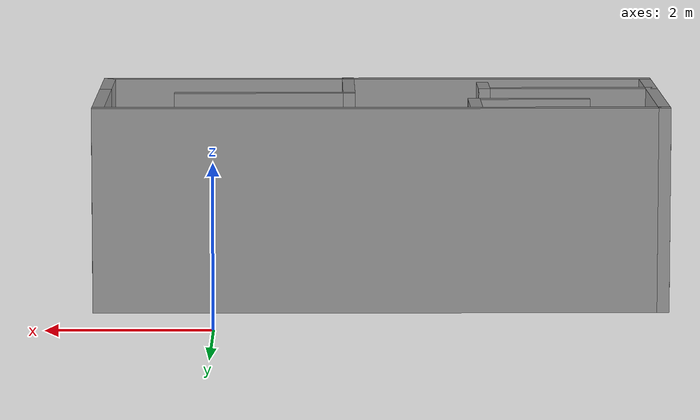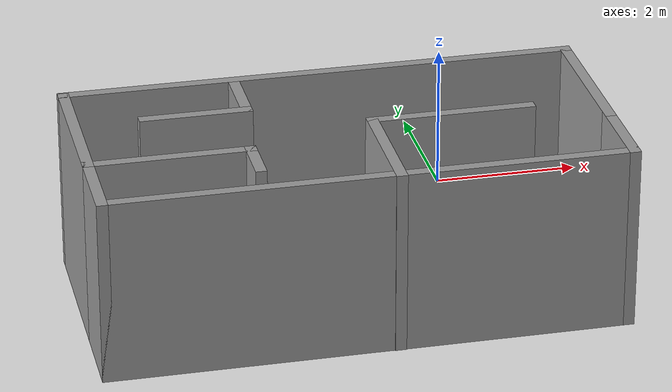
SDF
<?xml version='1.0'?>
<sdf version='1.7'>
  <model name='room'>
    <pose>-2.005 -2.3025 0 0 -0 0</pose>
    <link name='Wall_10'>
      <collision name='Wall_10_Collision'>
        <geometry>
          <box>
            <size>1.5 0.15 2.5</size>
          </box>
        </geometry>
        <pose>0 0 1.25 0 -0 0</pose>
      </collision>
      <visual name='Wall_10_Visual'>
        <pose>0 0 1.25 0 -0 0</pose>
        <geometry>
          <box>
            <size>1.5 0.15 2.5</size>
          </box>
        </geometry>
        <material>
          <script>
            <uri>file://media/materials/scripts/gazebo.material</uri>
            <name>Gazebo/Grey</name>
          </script>
          <ambient>1 1 1 1</ambient>
        </material>
        <meta>
          <layer>0</layer>
        </meta>
      </visual>
      <pose>-1.83 0.0425 0 0 -0 3.14159</pose>
    </link>
    <link name='Wall_14'>
      <collision name='Wall_14_Collision'>
        <geometry>
          <box>
            <size>1.25 0.15 2.5</size>
          </box>
        </geometry>
        <pose>0 0 1.25 0 -0 0</pose>
      </collision>
      <visual name='Wall_14_Visual'>
        <pose>0 0 1.25 0 -0 0</pose>
        <geometry>
          <box>
            <size>1.25 0.15 2.5</size>
          </box>
        </geometry>
        <material>
          <script>
            <uri>file://media/materials/scripts/gazebo.material</uri>
            <name>Gazebo/Grey</name>
          </script>
          <ambient>1 1 1 1</ambient>
        </material>
        <meta>
          <layer>0</layer>
        </meta>
      </visual>
      <pose>-3.425 -1.6675 0 0 -0 -1.5708</pose>
    </link>
    <link name='Wall_15'>
      <collision name='Wall_15_Collision'>
        <geometry>
          <box>
            <size>7 0.15 2.5</size>
          </box>
        </geometry>
        <pose>0 0 1.25 0 -0 0</pose>
      </collision>
      <visual name='Wall_15_Visual'>
        <pose>0 0 1.25 0 -0 0</pose>
        <geometry>
          <box>
            <size>7 0.15 2.5</size>
          </box>
        </geometry>
        <material>
          <script>
            <uri>file://media/materials/scripts/gazebo.material</uri>
            <name>Gazebo/Grey</name>
          </script>
          <ambient>1 1 1 1</ambient>
        </material>
        <meta>
          <layer>0</layer>
        </meta>
      </visual>
      <pose>-0 -2.2175 0 0 -0 0</pose>
    </link>
    <link name='Wall_16'>
      <collision name='Wall_16_Collision'>
        <geometry>
          <box>
            <size>1.25 0.15 2.5</size>
          </box>
        </geometry>
        <pose>0 0 1.25 0 -0 0</pose>
      </collision>
      <visual name='Wall_16_Visual'>
        <pose>0 0 1.25 0 -0 0</pose>
        <geometry>
          <box>
            <size>1.25 0.15 2.5</size>
          </box>
        </geometry>
        <material>
          <script>
            <uri>file://media/materials/scripts/gazebo.material</uri>
            <name>Gazebo/Grey</name>
          </script>
          <ambient>1 1 1 1</ambient>
        </material>
        <meta>
          <layer>0</layer>
        </meta>
      </visual>
      <pose>3.425 -1.6675 0 0 -0 1.5708</pose>
    </link>
    <link name='Wall_18'>
      <collision name='Wall_18_Collision'>
        <geometry>
          <box>
            <size>7 0.15 2.5</size>
          </box>
        </geometry>
        <pose>0 0 1.25 0 -0 0</pose>
      </collision>
      <visual name='Wall_18_Visual'>
        <pose>0 0 1.25 0 -0 0</pose>
        <geometry>
          <box>
            <size>7 0.15 2.5</size>
          </box>
        </geometry>
        <material>
          <script>
            <uri>file://media/materials/scripts/gazebo.material</uri>
            <name>Gazebo/Grey</name>
          </script>
          <ambient>1 1 1 1</ambient>
        </material>
        <meta>
          <layer>0</layer>
        </meta>
      </visual>
      <pose>-0 0.9825 0 0 -0 0</pose>
    </link>
    <link name='Wall_20'>
      <collision name='Wall_20_Collision'>
        <geometry>
          <box>
            <size>2.25 0.15 2.5</size>
          </box>
        </geometry>
        <pose>0 0 1.25 0 -0 0</pose>
      </collision>
      <visual name='Wall_20_Visual'>
        <pose>0 0 1.25 0 -0 0</pose>
        <geometry>
          <box>
            <size>2.25 0.15 2.5</size>
          </box>
        </geometry>
        <material>
          <script>
            <uri>file://media/materials/scripts/gazebo.material</uri>
            <name>Gazebo/Grey</name>
          </script>
          <ambient>1 1 1 1</ambient>
        </material>
        <meta>
          <layer>0</layer>
        </meta>
      </visual>
      <pose>-2.375 -1.1175 0 0 -0 0</pose>
    </link>
    <link name='Wall_21'>
      <collision name='Wall_21_Collision'>
        <geometry>
          <box>
            <size>0.75 0.15 2.5</size>
          </box>
        </geometry>
        <pose>0 0 1.25 0 -0 0</pose>
      </collision>
      <visual name='Wall_21_Visual'>
        <pose>0 0 1.25 0 -0 0</pose>
        <geometry>
          <box>
            <size>0.75 0.15 2.5</size>
          </box>
        </geometry>
        <material>
          <script>
            <uri>file://media/materials/scripts/gazebo.material</uri>
            <name>Gazebo/Grey</name>
          </script>
          <ambient>1 1 1 1</ambient>
        </material>
        <meta>
          <layer>0</layer>
        </meta>
      </visual>
      <pose>-1.325 -1.4175 0 0 -0 -1.5708</pose>
    </link>
    <link name='Wall_23'>
      <collision name='Wall_23_Collision'>
        <geometry>
          <box>
            <size>1.75 0.15 2.5</size>
          </box>
        </geometry>
        <pose>0 0 1.25 0 -0 0</pose>
      </collision>
      <visual name='Wall_23_Visual'>
        <pose>0 0 1.25 0 -0 0</pose>
        <geometry>
          <box>
            <size>1.75 0.15 2.5</size>
          </box>
        </geometry>
        <material>
          <script>
            <uri>file://media/materials/scripts/gazebo.material</uri>
            <name>Gazebo/Grey</name>
          </script>
          <ambient>1 1 1 1</ambient>
        </material>
        <meta>
          <layer>0</layer>
        </meta>
      </visual>
      <pose>0.375 -1.4275 0 0 -0 1.5708</pose>
    </link>
    <link name='Wall_24'>
      <collision name='Wall_24_Collision'>
        <geometry>
          <box>
            <size>2.25 0.15 2.5</size>
          </box>
        </geometry>
        <pose>0 0 1.25 0 -0 0</pose>
      </collision>
      <visual name='Wall_24_Visual'>
        <pose>0 0 1.25 0 -0 0</pose>
        <geometry>
          <box>
            <size>2.25 0.15 2.5</size>
          </box>
        </geometry>
        <material>
          <script>
            <uri>file://media/materials/scripts/gazebo.material</uri>
            <name>Gazebo/Grey</name>
          </script>
          <ambient>1 1 1 1</ambient>
        </material>
        <meta>
          <layer>0</layer>
        </meta>
      </visual>
      <pose>1.425 -0.6275 0 0 -0 0</pose>
    </link>
    <link name='Wall_3'>
      <collision name='Wall_3_Collision'>
        <geometry>
          <box>
            <size>2.25 0.15 2.5</size>
          </box>
        </geometry>
        <pose>0 0 1.25 0 -0 0</pose>
      </collision>
      <visual name='Wall_3_Visual'>
        <pose>0 0 1.25 0 -0 0</pose>
        <geometry>
          <box>
            <size>2.25 0.15 2.5</size>
          </box>
        </geometry>
        <material>
          <script>
            <uri>file://media/materials/scripts/gazebo.material</uri>
            <name>Gazebo/Grey</name>
          </script>
          <ambient>1 1 1 1</ambient>
        </material>
        <meta>
          <layer>0</layer>
        </meta>
      </visual>
      <pose>-3.425 -0.0675 0 0 -0 -1.5708</pose>
    </link>
    <link name='Wall_5'>
      <collision name='Wall_5_Collision'>
        <geometry>
          <box>
            <size>2.25 0.15 2.5</size>
          </box>
        </geometry>
        <pose>0 0 1.25 0 -0 0</pose>
      </collision>
      <visual name='Wall_5_Visual'>
        <pose>0 0 1.25 0 -0 0</pose>
        <geometry>
          <box>
            <size>2.25 0.15 2.5</size>
          </box>
        </geometry>
        <material>
          <script>
            <uri>file://media/materials/scripts/gazebo.material</uri>
            <name>Gazebo/Grey</name>
          </script>
          <ambient>1 1 1 1</ambient>
        </material>
        <meta>
          <layer>0</layer>
        </meta>
      </visual>
      <pose>3.425 -0.0675 0 0 -0 1.5708</pose>
    </link>
    <link name='Wall_7'>
      <collision name='Wall_7_Collision'>
        <geometry>
          <box>
            <size>0.15 0.15 2.5</size>
          </box>
        </geometry>
        <pose>0 0 1.25 0 -0 0</pose>
      </collision>
      <visual name='Wall_7_Visual'>
        <pose>0 0 1.25 0 -0 0</pose>
        <geometry>
          <box>
            <size>0.15 0.15 2.5</size>
          </box>
        </geometry>
        <material>
          <script>
            <uri>file://media/materials/scripts/gazebo.material</uri>
            <name>Gazebo/Grey</name>
          </script>
          <ambient>1 1 1 1</ambient>
        </material>
        <meta>
          <layer>0</layer>
        </meta>
      </visual>
      <pose>-3.425 0.9825 0 0 -0 0</pose>
    </link>
    <link name='Wall_9'>
      <collision name='Wall_9_Collision'>
        <geometry>
          <box>
            <size>1 0.15 2.5</size>
          </box>
        </geometry>
        <pose>0 0 1.25 0 -0 0</pose>
      </collision>
      <visual name='Wall_9_Visual'>
        <pose>0 0 1.25 0 -0 0</pose>
        <geometry>
          <box>
            <size>1 0.15 2.5</size>
          </box>
        </geometry>
        <material>
          <script>
            <uri>file://media/materials/scripts/gazebo.material</uri>
            <name>Gazebo/Grey</name>
          </script>
          <ambient>1 1 1 1</ambient>
        </material>
        <meta>
          <layer>0</layer>
        </meta>
      </visual>
      <pose>-1.155 0.4675 0 0 -0 -1.5708</pose>
    </link>
    <static>1</static>
  </model>
</sdf>
